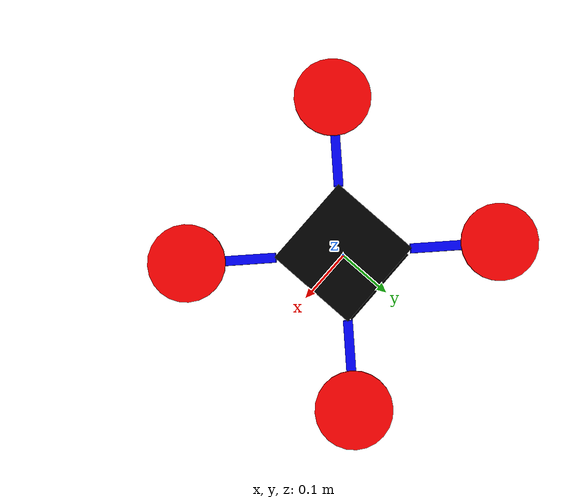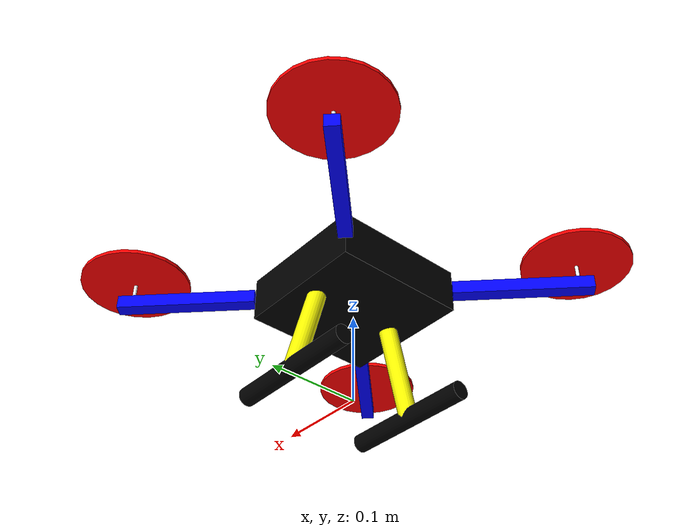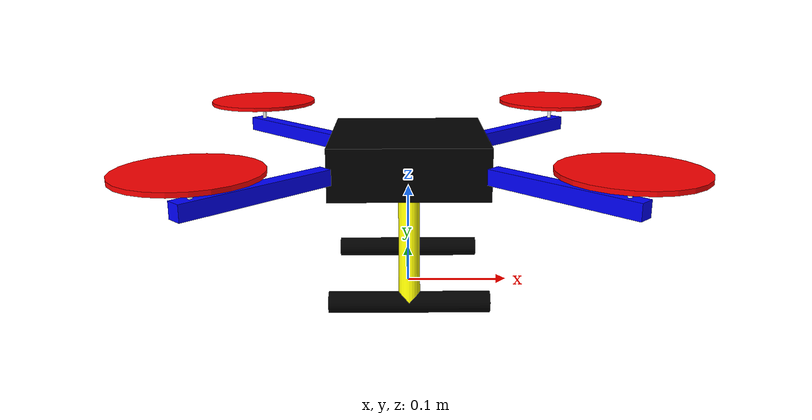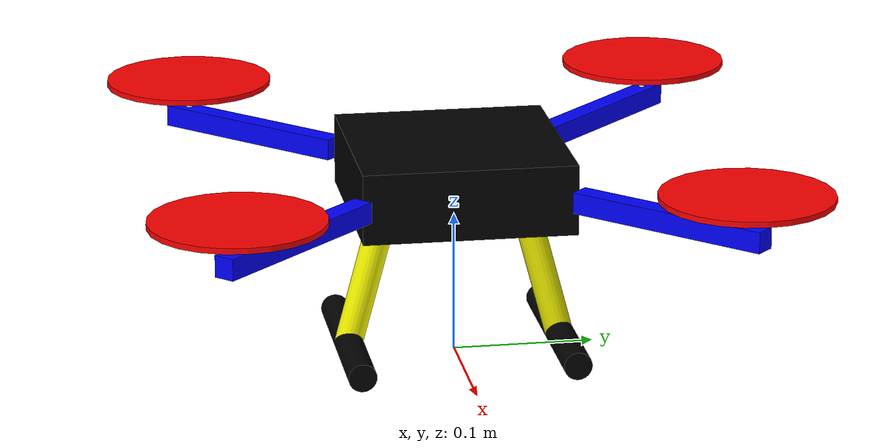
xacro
<?xml version="1.0"?>
<robot name="drone" xmlns:xacro="http://www.ros.org/wiki/xacro">

  <xacro:include filename="common_properties.xacro" />
  <xacro:include filename="drone_gazebo.xacro" />
  <xacro:include filename="imu_sensor.xacro" />

  <xacro:property name="base_length" value="0.15" />
  <xacro:property name="base_width" value="0.15" />
  <xacro:property name="base_height" value="0.05" />

  <xacro:property name="arm_length" value="0.15" />
  <xacro:property name="arm_width" value="0.015" />
  <xacro:property name="arm_height" value="0.015" />

  <xacro:property name="shaft_radius" value="0.002" />
  <xacro:property name="shaft_length" value="0.02" />

  <xacro:property name="propeller_radius" value="0.06" />
  <xacro:property name="propeller_length" value="0.004" />

  <xacro:property name="stand_radius" value="0.01" />
  <xacro:property name="stand_length" value="0.1" />

  <link name="base_footprint" />

  <link name="base_link">
    <visual>
      <geometry>
        <box size="${base_length} ${base_width} ${base_height}"/>
      </geometry>
      <origin xyz="0 0 0" rpy="0 0 0"/>
      <material name="black"/>
    </visual>
    <collision>
      <geometry>
        <box size="${base_length} ${base_width} ${base_height}"/>
      </geometry>
      <origin xyz="0 0 0" rpy="0 0 0"/>
    </collision>
    <xacro:box_inertia m="0.3" x="${base_length}" y="${base_width}" z="${base_height}" o_xyz="0 0 0" o_rpy="0 0 0" />
  </link>

  <link name="front_right_arm_link" >
    <visual>
      <geometry>
        <box size="${arm_length} ${arm_width} ${arm_height}" />
      </geometry>
      <origin xyz="${arm_length/2.0} 0 0" rpy="0 0 0" />
      <material name="blue"/>
    </visual>
    <collision>
      <geometry>
        <box size="${arm_length} ${arm_width} ${arm_height}" />
      </geometry>
      <origin xyz="${arm_length/2.0} 0 0" rpy="0 0 0" />
    </collision>
    <xacro:box_inertia m="0.025" x="${arm_length}" y="${arm_width}" z="${arm_height}" o_xyz="${arm_length/2.0} 0 0" o_rpy="0 0 0" />
  </link>

  <link name="front_left_arm_link" >
    <visual>
      <geometry>
        <box size="${arm_length} ${arm_width} ${arm_height}" />
      </geometry>
      <origin xyz="${arm_length/2.0} 0 0" rpy="0 0 0" />
      <material name="blue"/>
    </visual>
    <collision>
      <geometry>
        <box size="${arm_length} ${arm_width} ${arm_height}" />
      </geometry>
      <origin xyz="${arm_length/2.0} 0 0" rpy="0 0 0" />
    </collision>
    <xacro:box_inertia m="0.025" x="${arm_length}" y="${arm_width}" z="${arm_height}" o_xyz="${arm_length/2.0} 0 0" o_rpy="0 0 0" />
  </link>

  <link name="back_right_arm_link" >
    <visual>
      <geometry>
        <box size="${arm_length} ${arm_width} ${arm_height}" />
      </geometry>
      <origin xyz="${arm_length/2.0} 0 0" rpy="0 0 0" />
      <material name="blue"/>
    </visual>
    <collision>
      <geometry>
        <box size="${arm_length} ${arm_width} ${arm_height}" />
      </geometry>
      <origin xyz="${arm_length/2.0} 0 0" rpy="0 0 0" />
    </collision>
    <xacro:box_inertia m="0.025" x="${arm_length}" y="${arm_width}" z="${arm_height}" o_xyz="${arm_length/2.0} 0 0" o_rpy="0 0 0" />
  </link>

  <link name="back_left_arm_link" >
    <visual>
      <geometry>
        <box size="${arm_length} ${arm_width} ${arm_height}" />
      </geometry>
      <origin xyz="${arm_length/2.0} 0 0" rpy="0 0 0" />
      <material name="blue"/>
    </visual>
    <collision>
      <geometry>
        <box size="${arm_length} ${arm_width} ${arm_height}" />
      </geometry>
      <origin xyz="${arm_length/2.0} 0 0" rpy="0 0 0" />
    </collision>
    <xacro:box_inertia m="0.025" x="${arm_length}" y="${arm_width}" z="${arm_height}" o_xyz="${arm_length/2.0} 0 0" o_rpy="0 0 0" />
  </link>

  <link name="front_right_shaft_link" >
    <visual>
      <geometry>
        <cylinder radius="${shaft_radius}" length="${shaft_length}" />
      </geometry>
      <origin xyz="0 0 ${shaft_length/2.0}" rpy="0 0 0" />
      <material name="grey"/>
    </visual>
    <collision>
      <geometry>
        <cylinder radius="${shaft_radius}" length="${shaft_length}" />
      </geometry>
      <origin xyz="0 0 ${shaft_length/2.0}" rpy="0 0 0" />
    </collision>
    <xacro:cylinder_inertia m="0.03" r="${shaft_radius}" l="${shaft_length}" o_xyz="0 0 ${shaft_length/2.0}" o_rpy="0 0 0" />
  </link>

  <link name="front_left_shaft_link" >
    <visual>
      <geometry>
        <cylinder radius="${shaft_radius}" length="${shaft_length}" />
      </geometry>
      <origin xyz="0 0 ${shaft_length/2.0}" rpy="0 0 0" />
      <material name="grey"/>
    </visual>
    <collision>
      <geometry>
        <cylinder radius="${shaft_radius}" length="${shaft_length}" />
      </geometry>
      <origin xyz="0 0 ${shaft_length/2.0}" rpy="0 0 0" />
    </collision>
    <xacro:cylinder_inertia m="0.03" r="${shaft_radius}" l="${shaft_length}" o_xyz="0 0 ${shaft_length/2.0}" o_rpy="0 0 0" />
  </link>

  <link name="back_right_shaft_link" >
    <visual>
      <geometry>
        <cylinder radius="${shaft_radius}" length="${shaft_length}" />
      </geometry>
      <origin xyz="0 0 ${shaft_length/2.0}" rpy="0 0 0" />
      <material name="grey"/>
    </visual>
    <collision>
      <geometry>
        <cylinder radius="${shaft_radius}" length="${shaft_length}" />
      </geometry>
      <origin xyz="0 0 ${shaft_length/2.0}" rpy="0 0 0" />
    </collision>
    <xacro:cylinder_inertia m="0.03" r="${shaft_radius}" l="${shaft_length}" o_xyz="0 0 ${shaft_length/2.0}" o_rpy="0 0 0" />
  </link>

  <link name="back_left_shaft_link" >
    <visual>
      <geometry>
        <cylinder radius="${shaft_radius}" length="${shaft_length}" />
      </geometry>
      <origin xyz="0 0 ${shaft_length/2.0}" rpy="0 0 0" />
      <material name="grey"/>
    </visual>
    <collision>
      <geometry>
        <cylinder radius="${shaft_radius}" length="${shaft_length}" />
      </geometry>
      <origin xyz="0 0 ${shaft_length/2.0}" rpy="0 0 0" />
    </collision>
    <xacro:cylinder_inertia m="0.03" r="${shaft_radius}" l="${shaft_length}" o_xyz="0 0 ${shaft_length/2.0}" o_rpy="0 0 0" />
  </link>

  <link name="front_right_propeller_link" >
    <visual>
      <geometry>
        <cylinder radius="${propeller_radius}" length="${propeller_length}" />
      </geometry>
      <origin xyz="0 0 0" rpy="0 0 0" />
      <material name="red"/>
    </visual>
    <collision>
      <geometry>
        <cylinder radius="${propeller_radius}" length="${propeller_length}" />
      </geometry>
      <origin xyz="0 0 0" rpy="0 0 0" />
    </collision>
    <xacro:cylinder_inertia m="0.006" r="${propeller_radius}" l="${propeller_length}" o_xyz="0 0 0" o_rpy="0 0 0" />
  </link>

  <link name="front_left_propeller_link" >
    <visual>
      <geometry>
        <cylinder radius="${propeller_radius}" length="${propeller_length}" />
      </geometry>
      <origin xyz="0 0 0" rpy="0 0 0" />
      <material name="red"/>
    </visual>
    <collision>
      <geometry>
        <cylinder radius="${propeller_radius}" length="${propeller_length}" />
      </geometry>
      <origin xyz="0 0 0" rpy="0 0 0" />
    </collision>
    <xacro:cylinder_inertia m="0.006" r="${propeller_radius}" l="${propeller_length}" o_xyz="0 0 0" o_rpy="0 0 0" />
  </link>

  <link name="back_right_propeller_link" >
    <visual>
      <geometry>
        <cylinder radius="${propeller_radius}" length="${propeller_length}" />
      </geometry>
      <origin xyz="0 0 0" rpy="0 0 0" />
      <material name="red"/>
    </visual>
    <collision>
      <geometry>
        <cylinder radius="${propeller_radius}" length="${propeller_length}" />
      </geometry>
      <origin xyz="0 0 0" rpy="0 0 0" />
    </collision>
    <xacro:cylinder_inertia m="0.006" r="${propeller_radius}" l="${propeller_length}" o_xyz="0 0 0" o_rpy="0 0 0" />
  </link>

  <link name="back_left_propeller_link" >
    <visual>
      <geometry>
        <cylinder radius="${propeller_radius}" length="${propeller_length}" />
      </geometry>
      <origin xyz="0 0 0" rpy="0 0 0" />
      <material name="red"/>
    </visual>
    <collision>
      <geometry>
        <cylinder radius="${propeller_radius}" length="${propeller_length}" />
      </geometry>
      <origin xyz="0 0 0" rpy="0 0 0" />
    </collision>
    <xacro:cylinder_inertia m="0.006" r="${propeller_radius}" l="${propeller_length}" o_xyz="0 0 0" o_rpy="0 0 0" />
  </link>

  <link name="right_stand_link">
    <visual>
      <geometry>
        <cylinder radius="${stand_radius}" length="${stand_length}" />
      </geometry>
      <origin xyz="0 0 ${-stand_length/2.0}" rpy="0 0 0" />
      <material name="yellow" />
    </visual>
    <collision>
      <geometry>
        <cylinder radius="${stand_radius}" length="${stand_length}" />
      </geometry>
      <origin xyz="0 0 ${-stand_length/2.0}" rpy="0 0 0" />
    </collision>
    <xacro:cylinder_inertia m="0.015" r="${stand_radius}" l="${stand_length}" o_xyz="0 0 ${-stand_length/2.0}" o_rpy="0 0 0" />
  </link>

  <link name="left_stand_link">
    <visual>
      <geometry>
        <cylinder radius="${stand_radius}" length="${stand_length}" />
      </geometry>
      <origin xyz="0 0 ${-stand_length/2.0}" rpy="0 0 0" />
      <material name="yellow" />
    </visual>
    <collision>
      <geometry>
        <cylinder radius="${stand_radius}" length="${stand_length}" />
      </geometry>
      <origin xyz="0 0 ${-stand_length/2.0}" rpy="0 0 0" />
    </collision>
    <xacro:cylinder_inertia m="0.015" r="${stand_radius}" l="${stand_length}" o_xyz="0 0 ${-stand_length/2.0}" o_rpy="0 0 0" />
  </link>

  <link name="right_stand_base_link">
    <visual>
      <geometry>
        <cylinder radius="${stand_radius}" length="${base_length}" />
      </geometry>
      <origin xyz="0 0 0" rpy="0 ${-pi/2.0} 0" />
      <material name="black" />
    </visual>
    <collision>
      <geometry>
        <cylinder radius="${stand_radius}" length="${base_length}" />
      </geometry>
      <origin xyz="0 0 0" rpy="0 ${-pi/2.0} 0" />
    </collision>
    <xacro:cylinder_inertia m="0.01" r="${stand_radius}" l="${base_length}" o_xyz="0 0 0" o_rpy="0 ${-pi/2.0} 0" />
  </link>

  <link name="left_stand_base_link">
    <visual>
      <geometry>
        <cylinder radius="${stand_radius}" length="${base_length}" />
      </geometry>
      <origin xyz="0 0 0" rpy="0 ${-pi/2.0} 0" />
      <material name="black" />
    </visual>
    <collision>
      <geometry>
        <cylinder radius="${stand_radius}" length="${base_length}" />
      </geometry>
      <origin xyz="0 0 0" rpy="0 ${-pi/2.0} 0" />
    </collision>
    <xacro:cylinder_inertia m="0.01" r="${stand_radius}" l="${base_length}" o_xyz="0 0 0" o_rpy="0 ${-pi/2.0} 0" />
  </link>

  <joint name="base_joint" type="fixed">
    <parent link="base_footprint" />
    <child link="base_link" />
    <origin xyz="0 0 ${(base_height/2.0)+(stand_length)+(stand_radius/2.0)}" rpy="0 0 0" />
  </joint>

  <joint name="base_front_right_arm_joint" type="fixed">
    <parent link="base_link" />
    <child link="front_right_arm_link" />
    <origin xyz="${base_length/2.0} ${base_width/2.0} 0" rpy="0 0 ${pi/4.0}" />
  </joint>

  <joint name="base_front_left_arm_joint" type="fixed">
    <parent link="base_link" />
    <child link="front_left_arm_link" />
    <origin xyz="${base_length/2.0} ${-base_width/2.0} 0" rpy="0 0 ${-pi/4.0}" />
  </joint>

  <joint name="base_back_right_arm_joint" type="fixed">
    <parent link="base_link" />
    <child link="back_right_arm_link" />
    <origin xyz="${-base_length/2.0} ${base_width/2.0} 0" rpy="0 0 ${3.0*pi/4.0}" />
  </joint>

  <joint name="base_back_left_arm_joint" type="fixed">
    <parent link="base_link" />
    <child link="back_left_arm_link" />
    <origin xyz="${-base_length/2.0} ${-base_width/2.0} 0" rpy="0 0 ${-3.0*pi/4.0}" />
  </joint>

  <joint name="front_right_arm_shaft_joint" type="fixed">
    <parent link="front_right_arm_link" />
    <child link="front_right_shaft_link" />
    <origin xyz="${9*arm_length/10.0} 0 ${arm_height/2.0}" rpy="0 0 0" />
  </joint>

  <joint name="front_left_arm_shaft_joint" type="fixed">
    <parent link="front_left_arm_link" />
    <child link="front_left_shaft_link" />
    <origin xyz="${9*arm_length/10.0} 0 ${arm_height/2.0}" rpy="0 0 0" />
  </joint>

  <joint name="back_right_arm_shaft_joint" type="fixed">
    <parent link="back_right_arm_link" />
    <child link="back_right_shaft_link" />
    <origin xyz="${9*arm_length/10.0} 0 ${arm_height/2.0}" rpy="0 0 0" />
  </joint>

  <joint name="back_left_arm_shaft_joint" type="fixed">
    <parent link="back_left_arm_link" />
    <child link="back_left_shaft_link" />
    <origin xyz="${9*arm_length/10.0} 0 ${arm_height/2.0}" rpy="0 0 0" />
  </joint>

  <joint name="front_right_shaft_propeller" type="continuous">
    <parent link="front_right_shaft_link" />
    <child link="front_right_propeller_link" />
    <origin xyz="0 0 ${shaft_length}"  rpy="0 0 0" />
    <axis xyz="0 0 1" />
  </joint>

  <joint name="front_left_shaft_propeller" type="continuous">
    <parent link="front_left_shaft_link" />
    <child link="front_left_propeller_link" />
    <origin xyz="0 0 ${shaft_length}"  rpy="0 0 0" />
    <axis xyz="0 0 -1" />
  </joint>

  <joint name="back_right_shaft_propeller" type="continuous">
    <parent link="back_right_shaft_link" />
    <child link="back_right_propeller_link" />
    <origin xyz="0 0 ${shaft_length}"  rpy="0 0 0" />
    <axis xyz="0 0 -1" />
  </joint>

  <joint name="back_left_shaft_propeller" type="continuous">
    <parent link="back_left_shaft_link" />
    <child link="back_left_propeller_link" />
    <origin xyz="0 0 ${shaft_length}"  rpy="0 0 0" />
    <axis xyz="0 0 1" />
  </joint>

  <joint name="base_right_stand_joint" type="fixed">
    <parent link="base_link" />
    <child link="right_stand_link" />
    <origin xyz="0 ${-base_width/3.0} ${-base_height/2.0}" rpy="${-pi/12.0} 0 0" />
  </joint>

  <joint name="base_left_stand_joint" type="fixed">
    <parent link="base_link" />
    <child link="left_stand_link" />
    <origin xyz="0 ${base_width/3.0} ${-base_height/2.0}" rpy="${pi/12.0} 0 0" />
  </joint>

  <joint name="right_stand_base_joint" type="fixed">
    <parent link="right_stand_link" />
    <child link="right_stand_base_link" />
    <origin xyz="0 0 ${-stand_length}" rpy="0 0 0" />
  </joint>

  <joint name="left_stand_base_joint" type="fixed">
    <parent link="left_stand_link" />
    <child link="left_stand_base_link" />
    <origin xyz="0 0 ${-stand_length}" rpy="0 0 0" />
  </joint>

</robot>

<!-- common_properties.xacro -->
<robot xmlns:xacro="http://www.ros.org/wiki/xacro">
    <material name="green">
        <color rgba="0 0 1 1" />
    </material>
    <material name="grey">
        <color rgba="1 1 1 1" />
    </material>
    <material name="blue">
        <color rgba="0 0 1 1" />
    </material>
    <material name="black">
        <color rgba="0 0 0 1" />
    </material>
    <material name="yellow">
        <color rgba="1 1 0 1" />
    </material>
    <material name="red">
        <color rgba="1 0 0 1" />
    </material>

    <xacro:macro name="box_inertia" params="m x y z o_xyz o_rpy">
        <inertial>
            <mass value="${m}" />
            <origin xyz="${o_xyz}" rpy="${o_rpy}" />
            <inertia ixx="${(m/12)*(y*y + z*z)}" ixy="0" ixz="0"
                     iyy="${(m/12)*(x*x + z*z)}" iyz="0"
                     izz="${(m/12)*(x*x + y*y)}" />
        </inertial>
    </xacro:macro>

    <xacro:macro name="cylinder_inertia" params="m r l o_xyz o_rpy">
        <inertial>
            <mass value="${m}" />
            <origin xyz="${o_xyz}" rpy="${o_rpy}" />
            <inertia ixx="${(m/12)*(3*r*r + l*l)}" ixy="0" ixz="0"
                     iyy="${(m/12)*(3*r*r + l*l)}" iyz="0"
                     izz="${(m/2)*(r*r)}" />
        </inertial>
    </xacro:macro>

    <xacro:macro name="sphere_inertia" params="m r o_xyz o_rpy">
        <inertial>
            <mass value="${m}" />
            <origin xyz="${o_xyz}" rpy="${o_rpy}" />
            <inertia ixx="${(2*m/5)*(r*r)}" ixy="0" ixz="0"
                     iyy="${(2*m/5)*(r*r)}" iyz="0"
                     izz="${(2*m/5)*(r*r)}" />
        </inertial>
    </xacro:macro>

</robot>
